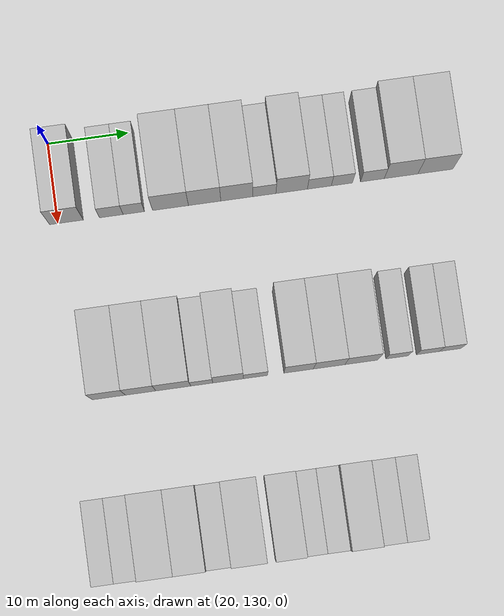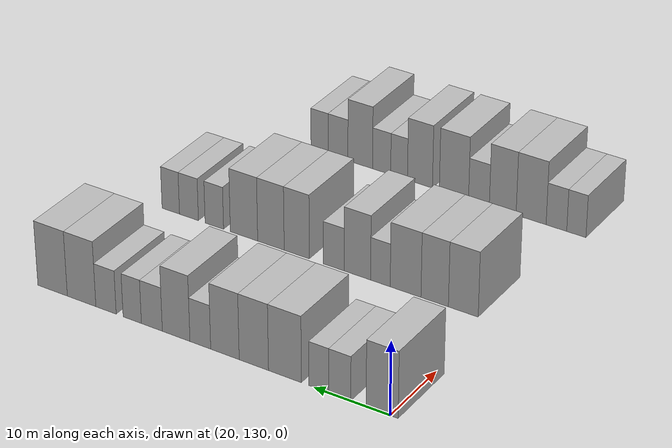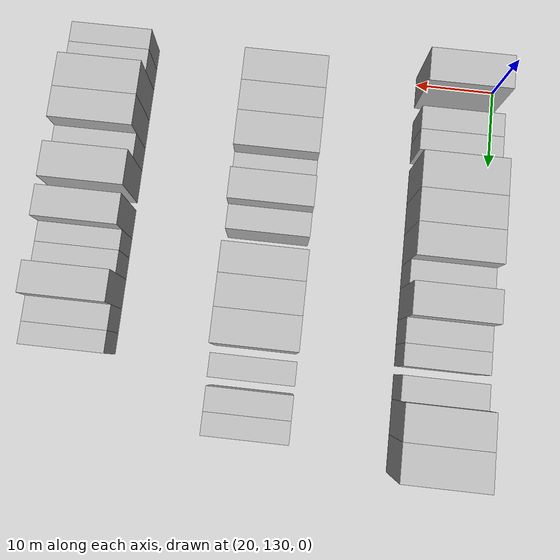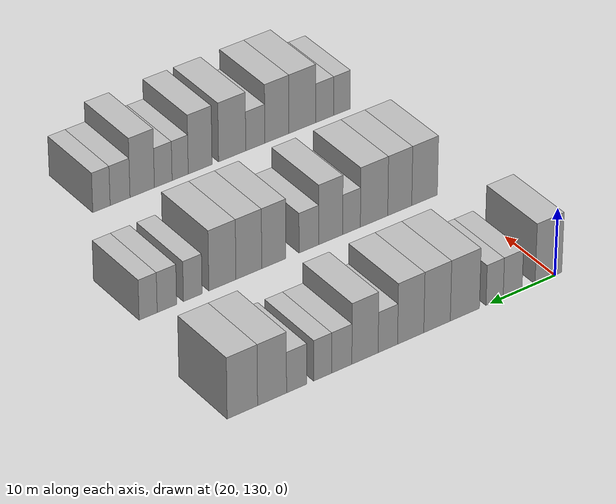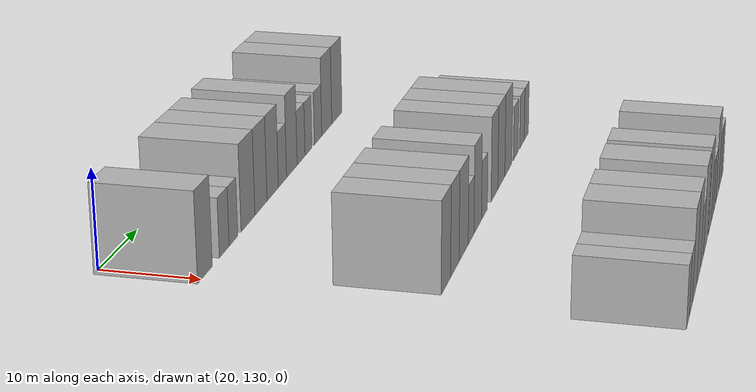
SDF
<sdf version="1.6">
 <world name="default">
  <model name="building_133">
   <static>1</static>
   <pose>25.0000 131.0616 0 0.000000 0.000000 0.000000</pose>
   <link name="link">
    <pose>0 0 4.50 0 0 0</pose>
    <collision name="collision"><geometry><box><size>10.0000 4.1559 9.0000</size></box></geometry></collision>
    <visual name="visual">
     <cast_shadows>0</cast_shadows>
     <geometry><box><size>10.0000 4.1559 9.0000</size></box></geometry>
     <material>
      <script>
       <uri>model://HANNAS_wall/materials/scripts</uri>
       <uri>model://HANNAS_wall/materials/textures</uri>
       <name>vrc/HANNAS_wall</name>
      </script>
     </material>
    </visual>
   </link>
  </model>
  <model name="building_134">
   <static>1</static>
   <pose>25.0000 136.5964 0 0.000000 0.000000 0.000000</pose>
   <link name="link">
    <pose>0 0 3.00 0 0 0</pose>
    <collision name="collision"><geometry><box><size>10.0000 2.9136 6.0000</size></box></geometry></collision>
    <visual name="visual">
     <cast_shadows>0</cast_shadows>
     <geometry><box><size>10.0000 2.9136 6.0000</size></box></geometry>
     <material>
      <script>
       <uri>model://HANNAS_wall/materials/scripts</uri>
       <uri>model://HANNAS_wall/materials/textures</uri>
       <name>vrc/HANNAS_wall</name>
      </script>
     </material>
    </visual>
   </link>
  </model>
  <model name="building_135">
   <static>1</static>
   <pose>25.0000 139.3690 0 0.000000 0.000000 0.000000</pose>
   <link name="link">
    <pose>0 0 3.00 0 0 0</pose>
    <collision name="collision"><geometry><box><size>10.0000 2.6317 6.0000</size></box></geometry></collision>
    <visual name="visual">
     <cast_shadows>0</cast_shadows>
     <geometry><box><size>10.0000 2.6317 6.0000</size></box></geometry>
     <material>
      <script>
       <uri>model://HANNAS_wall/materials/scripts</uri>
       <uri>model://HANNAS_wall/materials/textures</uri>
       <name>vrc/HANNAS_wall</name>
      </script>
     </material>
    </visual>
   </link>
  </model>
  <model name="building_136">
   <static>1</static>
   <pose>25.0000 143.9018 0 0.000000 0.000000 0.000000</pose>
   <link name="link">
    <pose>0 0 4.50 0 0 0</pose>
    <collision name="collision"><geometry><box><size>10.0000 4.4340 9.0000</size></box></geometry></collision>
    <visual name="visual">
     <cast_shadows>0</cast_shadows>
     <geometry><box><size>10.0000 4.4340 9.0000</size></box></geometry>
     <material>
      <script>
       <uri>model://HANNAS_wall/materials/scripts</uri>
       <uri>model://HANNAS_wall/materials/textures</uri>
       <name>vrc/HANNAS_wall</name>
      </script>
     </material>
    </visual>
   </link>
  </model>
  <model name="building_137">
   <static>1</static>
   <pose>25.0000 148.1171 0 0.000000 0.000000 0.000000</pose>
   <link name="link">
    <pose>0 0 4.50 0 0 0</pose>
    <collision name="collision"><geometry><box><size>10.0000 3.9965 9.0000</size></box></geometry></collision>
    <visual name="visual">
     <cast_shadows>0</cast_shadows>
     <geometry><box><size>10.0000 3.9965 9.0000</size></box></geometry>
     <material>
      <script>
       <uri>model://HANNAS_wall/materials/scripts</uri>
       <uri>model://HANNAS_wall/materials/textures</uri>
       <name>vrc/HANNAS_wall</name>
      </script>
     </material>
    </visual>
   </link>
  </model>
  <model name="building_138">
   <static>1</static>
   <pose>25.0000 152.0803 0 0.000000 0.000000 0.000000</pose>
   <link name="link">
    <pose>0 0 4.50 0 0 0</pose>
    <collision name="collision"><geometry><box><size>10.0000 3.9300 9.0000</size></box></geometry></collision>
    <visual name="visual">
     <cast_shadows>0</cast_shadows>
     <geometry><box><size>10.0000 3.9300 9.0000</size></box></geometry>
     <material>
      <script>
       <uri>model://HANNAS_wall/materials/scripts</uri>
       <uri>model://HANNAS_wall/materials/textures</uri>
       <name>vrc/HANNAS_wall</name>
      </script>
     </material>
    </visual>
   </link>
  </model>
  <model name="building_139">
   <static>1</static>
   <pose>25.0000 155.4895 0 0.000000 0.000000 0.000000</pose>
   <link name="link">
    <pose>0 0 3.00 0 0 0</pose>
    <collision name="collision"><geometry><box><size>10.0000 2.8884 6.0000</size></box></geometry></collision>
    <visual name="visual">
     <cast_shadows>0</cast_shadows>
     <geometry><box><size>10.0000 2.8884 6.0000</size></box></geometry>
     <material>
      <script>
       <uri>model://HANNAS_wall/materials/scripts</uri>
       <uri>model://HANNAS_wall/materials/textures</uri>
       <name>vrc/HANNAS_wall</name>
      </script>
     </material>
    </visual>
   </link>
  </model>
  <model name="building_140">
   <static>1</static>
   <pose>25.0000 158.8769 0 0.000000 0.000000 0.000000</pose>
   <link name="link">
    <pose>0 0 4.50 0 0 0</pose>
    <collision name="collision"><geometry><box><size>10.0000 3.8864 9.0000</size></box></geometry></collision>
    <visual name="visual">
     <cast_shadows>0</cast_shadows>
     <geometry><box><size>10.0000 3.8864 9.0000</size></box></geometry>
     <material>
      <script>
       <uri>model://HANNAS_wall/materials/scripts</uri>
       <uri>model://HANNAS_wall/materials/textures</uri>
       <name>vrc/HANNAS_wall</name>
      </script>
     </material>
    </visual>
   </link>
  </model>
  <model name="building_141">
   <static>1</static>
   <pose>25.0000 162.3075 0 0.000000 0.000000 0.000000</pose>
   <link name="link">
    <pose>0 0 3.00 0 0 0</pose>
    <collision name="collision"><geometry><box><size>10.0000 2.9748 6.0000</size></box></geometry></collision>
    <visual name="visual">
     <cast_shadows>0</cast_shadows>
     <geometry><box><size>10.0000 2.9748 6.0000</size></box></geometry>
     <material>
      <script>
       <uri>model://HANNAS_wall/materials/scripts</uri>
       <uri>model://HANNAS_wall/materials/textures</uri>
       <name>vrc/HANNAS_wall</name>
      </script>
     </material>
    </visual>
   </link>
  </model>
  <model name="building_142">
   <static>1</static>
   <pose>25.0000 165.1036 0 0.000000 0.000000 0.000000</pose>
   <link name="link">
    <pose>0 0 3.00 0 0 0</pose>
    <collision name="collision"><geometry><box><size>10.0000 2.6174 6.0000</size></box></geometry></collision>
    <visual name="visual">
     <cast_shadows>0</cast_shadows>
     <geometry><box><size>10.0000 2.6174 6.0000</size></box></geometry>
     <material>
      <script>
       <uri>model://HANNAS_wall/materials/scripts</uri>
       <uri>model://HANNAS_wall/materials/textures</uri>
       <name>vrc/HANNAS_wall</name>
      </script>
     </material>
    </visual>
   </link>
  </model>
  <model name="building_143">
   <static>1</static>
   <pose>25.0000 168.8831 0 0.000000 0.000000 0.000000</pose>
   <link name="link">
    <pose>0 0 3.00 0 0 0</pose>
    <collision name="collision"><geometry><box><size>10.0000 2.9416 6.0000</size></box></geometry></collision>
    <visual name="visual">
     <cast_shadows>0</cast_shadows>
     <geometry><box><size>10.0000 2.9416 6.0000</size></box></geometry>
     <material>
      <script>
       <uri>model://HANNAS_wall/materials/scripts</uri>
       <uri>model://HANNAS_wall/materials/textures</uri>
       <name>vrc/HANNAS_wall</name>
      </script>
     </material>
    </visual>
   </link>
  </model>
  <model name="building_144">
   <static>1</static>
   <pose>25.0000 172.4408 0 0.000000 0.000000 0.000000</pose>
   <link name="link">
    <pose>0 0 4.50 0 0 0</pose>
    <collision name="collision"><geometry><box><size>10.0000 4.1737 9.0000</size></box></geometry></collision>
    <visual name="visual">
     <cast_shadows>0</cast_shadows>
     <geometry><box><size>10.0000 4.1737 9.0000</size></box></geometry>
     <material>
      <script>
       <uri>model://HANNAS_wall/materials/scripts</uri>
       <uri>model://HANNAS_wall/materials/textures</uri>
       <name>vrc/HANNAS_wall</name>
      </script>
     </material>
    </visual>
   </link>
  </model>
  <model name="building_145">
   <static>1</static>
   <pose>25.0000 176.7045 0 0.000000 0.000000 0.000000</pose>
   <link name="link">
    <pose>0 0 4.50 0 0 0</pose>
    <collision name="collision"><geometry><box><size>10.0000 4.3538 9.0000</size></box></geometry></collision>
    <visual name="visual">
     <cast_shadows>0</cast_shadows>
     <geometry><box><size>10.0000 4.3538 9.0000</size></box></geometry>
     <material>
      <script>
       <uri>model://HANNAS_wall/materials/scripts</uri>
       <uri>model://HANNAS_wall/materials/textures</uri>
       <name>vrc/HANNAS_wall</name>
      </script>
     </material>
    </visual>
   </link>
  </model>
  <model name="building_316">
   <static>1</static>
   <pose>47.0000 133.4358 0 0.000000 0.000000 0.000000</pose>
   <link name="link">
    <pose>0 0 4.50 0 0 0</pose>
    <collision name="collision"><geometry><box><size>10.0000 4.0182 9.0000</size></box></geometry></collision>
    <visual name="visual">
     <cast_shadows>0</cast_shadows>
     <geometry><box><size>10.0000 4.0182 9.0000</size></box></geometry>
     <material>
      <script>
       <uri>model://HANNAS_wall/materials/scripts</uri>
       <uri>model://HANNAS_wall/materials/textures</uri>
       <name>vrc/HANNAS_wall</name>
      </script>
     </material>
    </visual>
   </link>
  </model>
  <model name="building_317">
   <static>1</static>
   <pose>47.0000 137.3122 0 0.000000 0.000000 0.000000</pose>
   <link name="link">
    <pose>0 0 4.50 0 0 0</pose>
    <collision name="collision"><geometry><box><size>10.0000 3.7347 9.0000</size></box></geometry></collision>
    <visual name="visual">
     <cast_shadows>0</cast_shadows>
     <geometry><box><size>10.0000 3.7347 9.0000</size></box></geometry>
     <material>
      <script>
       <uri>model://HANNAS_wall/materials/scripts</uri>
       <uri>model://HANNAS_wall/materials/textures</uri>
       <name>vrc/HANNAS_wall</name>
      </script>
     </material>
    </visual>
   </link>
  </model>
  <model name="building_318">
   <static>1</static>
   <pose>47.0000 141.2990 0 0.000000 0.000000 0.000000</pose>
   <link name="link">
    <pose>0 0 4.50 0 0 0</pose>
    <collision name="collision"><geometry><box><size>10.0000 4.2389 9.0000</size></box></geometry></collision>
    <visual name="visual">
     <cast_shadows>0</cast_shadows>
     <geometry><box><size>10.0000 4.2389 9.0000</size></box></geometry>
     <material>
      <script>
       <uri>model://HANNAS_wall/materials/scripts</uri>
       <uri>model://HANNAS_wall/materials/textures</uri>
       <name>vrc/HANNAS_wall</name>
      </script>
     </material>
    </visual>
   </link>
  </model>
  <model name="building_319">
   <static>1</static>
   <pose>47.0000 144.7791 0 0.000000 0.000000 0.000000</pose>
   <link name="link">
    <pose>0 0 3.00 0 0 0</pose>
    <collision name="collision"><geometry><box><size>10.0000 2.7213 6.0000</size></box></geometry></collision>
    <visual name="visual">
     <cast_shadows>0</cast_shadows>
     <geometry><box><size>10.0000 2.7213 6.0000</size></box></geometry>
     <material>
      <script>
       <uri>model://HANNAS_wall/materials/scripts</uri>
       <uri>model://HANNAS_wall/materials/textures</uri>
       <name>vrc/HANNAS_wall</name>
      </script>
     </material>
    </visual>
   </link>
  </model>
  <model name="building_320">
   <static>1</static>
   <pose>47.0000 147.9834 0 0.000000 0.000000 0.000000</pose>
   <link name="link">
    <pose>0 0 4.50 0 0 0</pose>
    <collision name="collision"><geometry><box><size>10.0000 3.6873 9.0000</size></box></geometry></collision>
    <visual name="visual">
     <cast_shadows>0</cast_shadows>
     <geometry><box><size>10.0000 3.6873 9.0000</size></box></geometry>
     <material>
      <script>
       <uri>model://HANNAS_wall/materials/scripts</uri>
       <uri>model://HANNAS_wall/materials/textures</uri>
       <name>vrc/HANNAS_wall</name>
      </script>
     </material>
    </visual>
   </link>
  </model>
  <model name="building_321">
   <static>1</static>
   <pose>47.0000 151.3126 0 0.000000 0.000000 0.000000</pose>
   <link name="link">
    <pose>0 0 3.00 0 0 0</pose>
    <collision name="collision"><geometry><box><size>10.0000 2.9712 6.0000</size></box></geometry></collision>
    <visual name="visual">
     <cast_shadows>0</cast_shadows>
     <geometry><box><size>10.0000 2.9712 6.0000</size></box></geometry>
     <material>
      <script>
       <uri>model://HANNAS_wall/materials/scripts</uri>
       <uri>model://HANNAS_wall/materials/textures</uri>
       <name>vrc/HANNAS_wall</name>
      </script>
     </material>
    </visual>
   </link>
  </model>
  <model name="building_322">
   <static>1</static>
   <pose>47.0000 156.6080 0 0.000000 0.000000 0.000000</pose>
   <link name="link">
    <pose>0 0 4.50 0 0 0</pose>
    <collision name="collision"><geometry><box><size>10.0000 3.6196 9.0000</size></box></geometry></collision>
    <visual name="visual">
     <cast_shadows>0</cast_shadows>
     <geometry><box><size>10.0000 3.6196 9.0000</size></box></geometry>
     <material>
      <script>
       <uri>model://HANNAS_wall/materials/scripts</uri>
       <uri>model://HANNAS_wall/materials/textures</uri>
       <name>vrc/HANNAS_wall</name>
      </script>
     </material>
    </visual>
   </link>
  </model>
  <model name="building_323">
   <static>1</static>
   <pose>47.0000 160.3450 0 0.000000 0.000000 0.000000</pose>
   <link name="link">
    <pose>0 0 4.50 0 0 0</pose>
    <collision name="collision"><geometry><box><size>10.0000 3.8543 9.0000</size></box></geometry></collision>
    <visual name="visual">
     <cast_shadows>0</cast_shadows>
     <geometry><box><size>10.0000 3.8543 9.0000</size></box></geometry>
     <material>
      <script>
       <uri>model://HANNAS_wall/materials/scripts</uri>
       <uri>model://HANNAS_wall/materials/textures</uri>
       <name>vrc/HANNAS_wall</name>
      </script>
     </material>
    </visual>
   </link>
  </model>
  <model name="building_324">
   <static>1</static>
   <pose>47.0000 164.2804 0 0.000000 0.000000 0.000000</pose>
   <link name="link">
    <pose>0 0 4.50 0 0 0</pose>
    <collision name="collision"><geometry><box><size>10.0000 4.0166 9.0000</size></box></geometry></collision>
    <visual name="visual">
     <cast_shadows>0</cast_shadows>
     <geometry><box><size>10.0000 4.0166 9.0000</size></box></geometry>
     <material>
      <script>
       <uri>model://HANNAS_wall/materials/scripts</uri>
       <uri>model://HANNAS_wall/materials/textures</uri>
       <name>vrc/HANNAS_wall</name>
      </script>
     </material>
    </visual>
   </link>
  </model>
  <model name="building_325">
   <static>1</static>
   <pose>47.0000 168.6607 0 0.000000 0.000000 0.000000</pose>
   <link name="link">
    <pose>0 0 3.00 0 0 0</pose>
    <collision name="collision"><geometry><box><size>10.0000 2.7439 6.0000</size></box></geometry></collision>
    <visual name="visual">
     <cast_shadows>0</cast_shadows>
     <geometry><box><size>10.0000 2.7439 6.0000</size></box></geometry>
     <material>
      <script>
       <uri>model://HANNAS_wall/materials/scripts</uri>
       <uri>model://HANNAS_wall/materials/textures</uri>
       <name>vrc/HANNAS_wall</name>
      </script>
     </material>
    </visual>
   </link>
  </model>
  <model name="building_326">
   <static>1</static>
   <pose>47.0000 172.4531 0 0.000000 0.000000 0.000000</pose>
   <link name="link">
    <pose>0 0 3.00 0 0 0</pose>
    <collision name="collision"><geometry><box><size>10.0000 2.8409 6.0000</size></box></geometry></collision>
    <visual name="visual">
     <cast_shadows>0</cast_shadows>
     <geometry><box><size>10.0000 2.8409 6.0000</size></box></geometry>
     <material>
      <script>
       <uri>model://HANNAS_wall/materials/scripts</uri>
       <uri>model://HANNAS_wall/materials/textures</uri>
       <name>vrc/HANNAS_wall</name>
      </script>
     </material>
    </visual>
   </link>
  </model>
  <model name="building_327">
   <static>1</static>
   <pose>47.0000 175.1893 0 0.000000 0.000000 0.000000</pose>
   <link name="link">
    <pose>0 0 3.00 0 0 0</pose>
    <collision name="collision"><geometry><box><size>10.0000 2.6314 6.0000</size></box></geometry></collision>
    <visual name="visual">
     <cast_shadows>0</cast_shadows>
     <geometry><box><size>10.0000 2.6314 6.0000</size></box></geometry>
     <material>
      <script>
       <uri>model://HANNAS_wall/materials/scripts</uri>
       <uri>model://HANNAS_wall/materials/textures</uri>
       <name>vrc/HANNAS_wall</name>
      </script>
     </material>
    </visual>
   </link>
  </model>
  <model name="building_509">
   <static>1</static>
   <pose>69.0000 130.2357 0 0.000000 0.000000 0.000000</pose>
   <link name="link">
    <pose>0 0 3.00 0 0 0</pose>
    <collision name="collision"><geometry><box><size>10.0000 2.6485 6.0000</size></box></geometry></collision>
    <visual name="visual">
     <cast_shadows>0</cast_shadows>
     <geometry><box><size>10.0000 2.6485 6.0000</size></box></geometry>
     <material>
      <script>
       <uri>model://HANNAS_wall/materials/scripts</uri>
       <uri>model://HANNAS_wall/materials/textures</uri>
       <name>vrc/HANNAS_wall</name>
      </script>
     </material>
    </visual>
   </link>
  </model>
  <model name="building_510">
   <static>1</static>
   <pose>69.0000 132.9906 0 0.000000 0.000000 0.000000</pose>
   <link name="link">
    <pose>0 0 3.00 0 0 0</pose>
    <collision name="collision"><geometry><box><size>10.0000 2.8613 6.0000</size></box></geometry></collision>
    <visual name="visual">
     <cast_shadows>0</cast_shadows>
     <geometry><box><size>10.0000 2.8613 6.0000</size></box></geometry>
     <material>
      <script>
       <uri>model://HANNAS_wall/materials/scripts</uri>
       <uri>model://HANNAS_wall/materials/textures</uri>
       <name>vrc/HANNAS_wall</name>
      </script>
     </material>
    </visual>
   </link>
  </model>
  <model name="building_511">
   <static>1</static>
   <pose>69.0000 136.5269 0 0.000000 0.000000 0.000000</pose>
   <link name="link">
    <pose>0 0 4.50 0 0 0</pose>
    <collision name="collision"><geometry><box><size>10.0000 4.2112 9.0000</size></box></geometry></collision>
    <visual name="visual">
     <cast_shadows>0</cast_shadows>
     <geometry><box><size>10.0000 4.2112 9.0000</size></box></geometry>
     <material>
      <script>
       <uri>model://HANNAS_wall/materials/scripts</uri>
       <uri>model://HANNAS_wall/materials/textures</uri>
       <name>vrc/HANNAS_wall</name>
      </script>
     </material>
    </visual>
   </link>
  </model>
  <model name="building_512">
   <static>1</static>
   <pose>69.0000 140.5304 0 0.000000 0.000000 0.000000</pose>
   <link name="link">
    <pose>0 0 4.50 0 0 0</pose>
    <collision name="collision"><geometry><box><size>10.0000 3.7958 9.0000</size></box></geometry></collision>
    <visual name="visual">
     <cast_shadows>0</cast_shadows>
     <geometry><box><size>10.0000 3.7958 9.0000</size></box></geometry>
     <material>
      <script>
       <uri>model://HANNAS_wall/materials/scripts</uri>
       <uri>model://HANNAS_wall/materials/textures</uri>
       <name>vrc/HANNAS_wall</name>
      </script>
     </material>
    </visual>
   </link>
  </model>
  <model name="building_513">
   <static>1</static>
   <pose>69.0000 143.9114 0 0.000000 0.000000 0.000000</pose>
   <link name="link">
    <pose>0 0 3.00 0 0 0</pose>
    <collision name="collision"><geometry><box><size>10.0000 2.9663 6.0000</size></box></geometry></collision>
    <visual name="visual">
     <cast_shadows>0</cast_shadows>
     <geometry><box><size>10.0000 2.9663 6.0000</size></box></geometry>
     <material>
      <script>
       <uri>model://HANNAS_wall/materials/scripts</uri>
       <uri>model://HANNAS_wall/materials/textures</uri>
       <name>vrc/HANNAS_wall</name>
      </script>
     </material>
    </visual>
   </link>
  </model>
  <model name="building_514">
   <static>1</static>
   <pose>69.0000 147.5056 0 0.000000 0.000000 0.000000</pose>
   <link name="link">
    <pose>0 0 4.50 0 0 0</pose>
    <collision name="collision"><geometry><box><size>10.0000 4.2221 9.0000</size></box></geometry></collision>
    <visual name="visual">
     <cast_shadows>0</cast_shadows>
     <geometry><box><size>10.0000 4.2221 9.0000</size></box></geometry>
     <material>
      <script>
       <uri>model://HANNAS_wall/materials/scripts</uri>
       <uri>model://HANNAS_wall/materials/textures</uri>
       <name>vrc/HANNAS_wall</name>
      </script>
     </material>
    </visual>
   </link>
  </model>
  <model name="building_515">
   <static>1</static>
   <pose>69.0000 152.4471 0 0.000000 0.000000 0.000000</pose>
   <link name="link">
    <pose>0 0 4.50 0 0 0</pose>
    <collision name="collision"><geometry><box><size>10.0000 3.6609 9.0000</size></box></geometry></collision>
    <visual name="visual">
     <cast_shadows>0</cast_shadows>
     <geometry><box><size>10.0000 3.6609 9.0000</size></box></geometry>
     <material>
      <script>
       <uri>model://HANNAS_wall/materials/scripts</uri>
       <uri>model://HANNAS_wall/materials/textures</uri>
       <name>vrc/HANNAS_wall</name>
      </script>
     </material>
    </visual>
   </link>
  </model>
  <model name="building_516">
   <static>1</static>
   <pose>69.0000 155.5113 0 0.000000 0.000000 0.000000</pose>
   <link name="link">
    <pose>0 0 3.00 0 0 0</pose>
    <collision name="collision"><geometry><box><size>10.0000 2.4676 6.0000</size></box></geometry></collision>
    <visual name="visual">
     <cast_shadows>0</cast_shadows>
     <geometry><box><size>10.0000 2.4676 6.0000</size></box></geometry>
     <material>
      <script>
       <uri>model://HANNAS_wall/materials/scripts</uri>
       <uri>model://HANNAS_wall/materials/textures</uri>
       <name>vrc/HANNAS_wall</name>
      </script>
     </material>
    </visual>
   </link>
  </model>
  <model name="building_517">
   <static>1</static>
   <pose>69.0000 158.0906 0 0.000000 0.000000 0.000000</pose>
   <link name="link">
    <pose>0 0 3.00 0 0 0</pose>
    <collision name="collision"><geometry><box><size>10.0000 2.6910 6.0000</size></box></geometry></collision>
    <visual name="visual">
     <cast_shadows>0</cast_shadows>
     <geometry><box><size>10.0000 2.6910 6.0000</size></box></geometry>
     <material>
      <script>
       <uri>model://HANNAS_wall/materials/scripts</uri>
       <uri>model://HANNAS_wall/materials/textures</uri>
       <name>vrc/HANNAS_wall</name>
      </script>
     </material>
    </visual>
   </link>
  </model>
  <model name="building_518">
   <static>1</static>
   <pose>69.0000 161.2831 0 0.000000 0.000000 0.000000</pose>
   <link name="link">
    <pose>0 0 4.50 0 0 0</pose>
    <collision name="collision"><geometry><box><size>10.0000 3.6939 9.0000</size></box></geometry></collision>
    <visual name="visual">
     <cast_shadows>0</cast_shadows>
     <geometry><box><size>10.0000 3.6939 9.0000</size></box></geometry>
     <material>
      <script>
       <uri>model://HANNAS_wall/materials/scripts</uri>
       <uri>model://HANNAS_wall/materials/textures</uri>
       <name>vrc/HANNAS_wall</name>
      </script>
     </material>
    </visual>
   </link>
  </model>
  <model name="building_519">
   <static>1</static>
   <pose>69.0000 164.6261 0 0.000000 0.000000 0.000000</pose>
   <link name="link">
    <pose>0 0 3.00 0 0 0</pose>
    <collision name="collision"><geometry><box><size>10.0000 2.9921 6.0000</size></box></geometry></collision>
    <visual name="visual">
     <cast_shadows>0</cast_shadows>
     <geometry><box><size>10.0000 2.9921 6.0000</size></box></geometry>
     <material>
      <script>
       <uri>model://HANNAS_wall/materials/scripts</uri>
       <uri>model://HANNAS_wall/materials/textures</uri>
       <name>vrc/HANNAS_wall</name>
      </script>
     </material>
    </visual>
   </link>
  </model>
  <model name="building_520">
   <static>1</static>
   <pose>69.0000 167.4211 0 0.000000 0.000000 0.000000</pose>
   <link name="link">
    <pose>0 0 3.00 0 0 0</pose>
    <collision name="collision"><geometry><box><size>10.0000 2.5978 6.0000</size></box></geometry></collision>
    <visual name="visual">
     <cast_shadows>0</cast_shadows>
     <geometry><box><size>10.0000 2.5978 6.0000</size></box></geometry>
     <material>
      <script>
       <uri>model://HANNAS_wall/materials/scripts</uri>
       <uri>model://HANNAS_wall/materials/textures</uri>
       <name>vrc/HANNAS_wall</name>
      </script>
     </material>
    </visual>
   </link>
  </model>
 </world>
</sdf>
